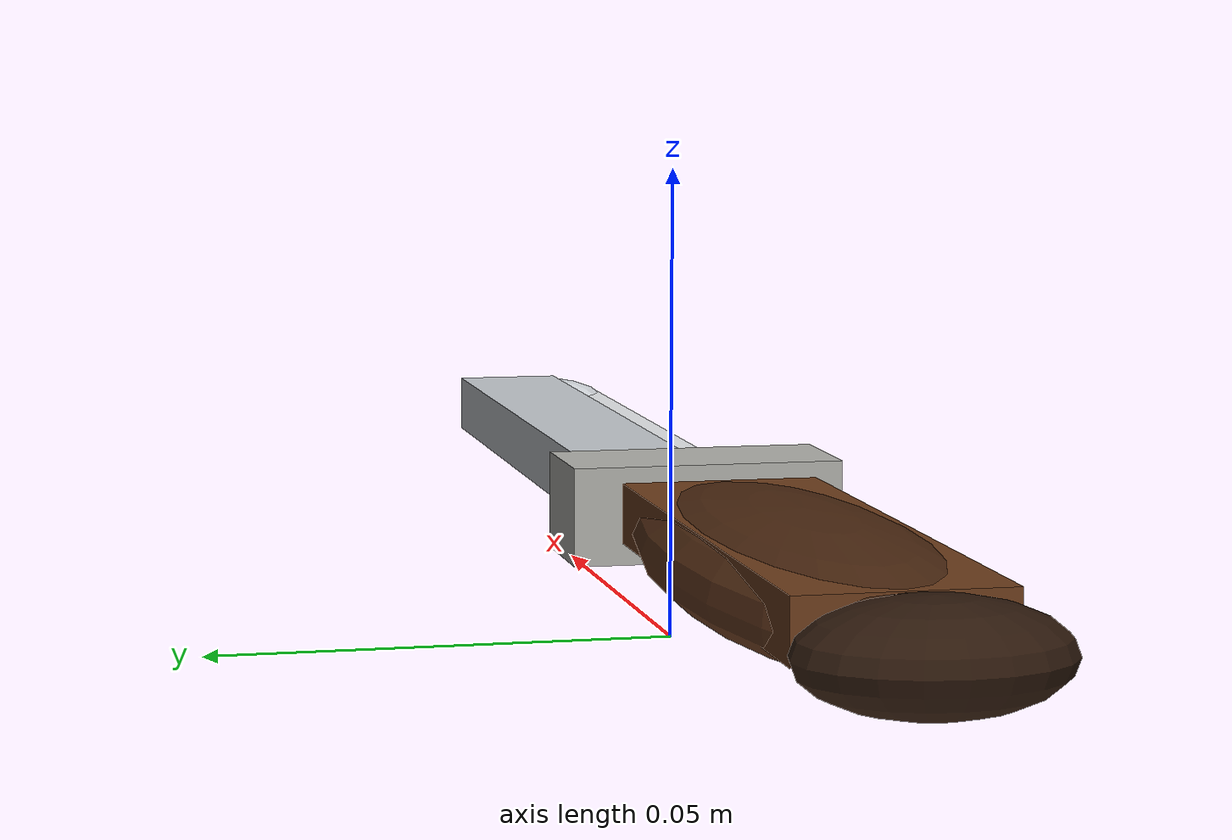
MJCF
<mujoco model="kitchen_knife">
  <worldbody>
    <body>
      <body name="object">
        <geom name="knife_handle_collision" type="box"
              pos="-0.048 0 0.014" size="0.036 0.012 0.006"
              rgba="0 0 0 0" density="750"
              friction="1.2 0.01 0.0001" group="0"/>
        <geom name="knife_blade_collision" type="box"
              pos="0.023 0 0.014" size="0.048 0.010 0.004"
              rgba="0 0 0 0" density="750"
              friction="1.2 0.01 0.0001" group="0"/>

        <geom name="wood_handle_main_visual" type="ellipsoid"
              pos="-0.050 0 0.016" size="0.040 0.013 0.006"
              rgba="0.30 0.16 0.07 1"
              contype="0" conaffinity="0" group="1"/>
        <geom name="wood_handle_grip_visual" type="box"
              pos="-0.050 0 0.017" size="0.030 0.010 0.003"
              rgba="0.43 0.24 0.11 1"
              contype="0" conaffinity="0" group="1"/>
        <geom name="handle_end_cap_visual" type="ellipsoid"
              pos="-0.087 0 0.016" size="0.009 0.012 0.005"
              rgba="0.18 0.10 0.05 1"
              contype="0" conaffinity="0" group="1"/>
        <geom name="metal_bolster_visual" type="box"
              pos="-0.010 0 0.016" size="0.006 0.014 0.005"
              rgba="0.70 0.70 0.68 1"
              contype="0" conaffinity="0" group="1"/>

        <geom name="blade_back_visual" type="box"
              pos="0.030 0.0033 0.016" size="0.044 0.006 0.0032"
              rgba="0.78 0.80 0.82 1"
              contype="0" conaffinity="0" group="1"/>
        <geom name="blade_edge_visual" type="box"
              pos="0.031 -0.0053 0.015" size="0.043 0.003 0.0022"
              rgba="0.92 0.93 0.94 1"
              contype="0" conaffinity="0" group="1"/>
        <geom name="blade_round_end_visual" type="ellipsoid"
              pos="0.073 -0.0010 0.016" size="0.007 0.008 0.003"
              rgba="0.86 0.88 0.90 1"
              contype="0" conaffinity="0" group="1"/>
      </body>
      <site name="bottom_site" pos="0 0 0.006" size="0.003" rgba="0 0 0 0"/>
      <site name="top_site" pos="0 0 0.024" size="0.003" rgba="0 0 0 0"/>
      <site name="horizontal_radius_site" pos="0.065 0 0.014"
            size="0.003" rgba="0 0 0 0"/>
    </body>
  </worldbody>
</mujoco>
